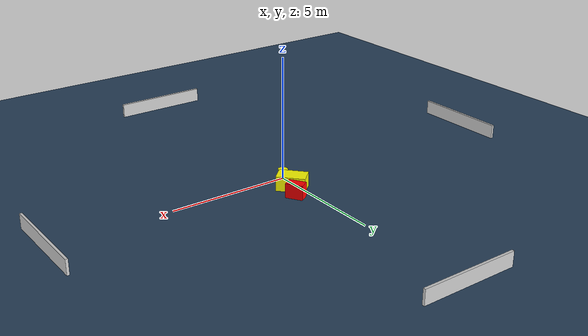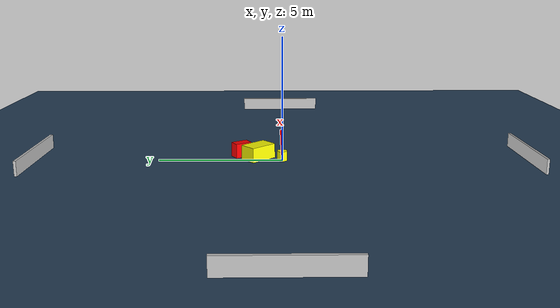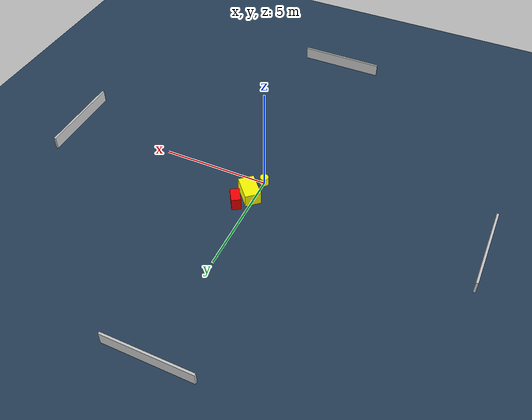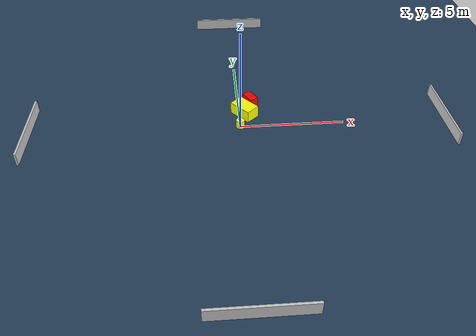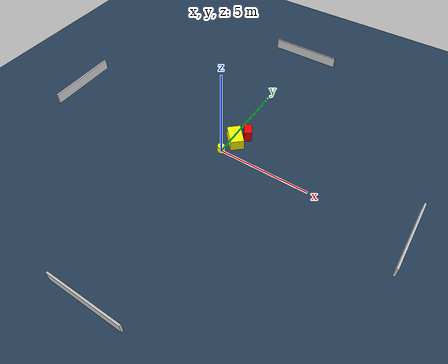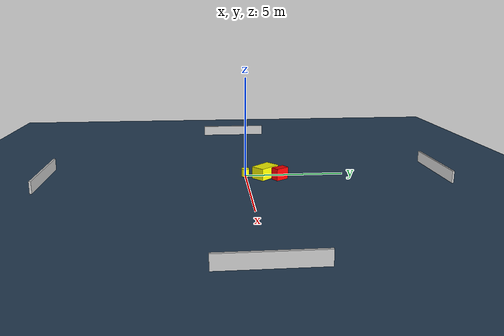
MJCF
<?xml version="1.0" ?>
<mujoco model="generated_environment">
  <option timestep="0.01" integrator="RK4" cone="elliptic"/>
  <default>
    <geom density="1"/>
  </default>
  <asset>
    <texture builtin="gradient" height="3072" name="skybox" rgb1="0.3 0.5 0.7" rgb2="0 0 0" type="skybox" width="512"/>
    <texture builtin="checker" height="300" name="groundplane" rgb1="0.2 0.3 0.4" rgb2="0.1 0.2 0.3" type="2d" width="300"/>
    <material name="groundplane" reflectance="0.2" texrepeat="5 5" texture="groundplane"/>
  </asset>
  <worldbody>
    <light dir="0 0 -1" directional="true" pos="0 0 1.5"/>
    <geom condim="3" friction="0.5 0.005 0.001" material="groundplane" name="floor" pos="0 0 0" size="0 0 0.05" type="plane"/>
    <body name="walls">
      <geom name="wall_1" condim="4" pos="-10.0 0.0 0.3" rgba="0.800000011920929 0.800000011920929 0.800000011920929 1.0" size="0.05 2.0 0.3" type="box"/>
      <geom name="wall_2" condim="4" pos="10.0 0.0 0.3" rgba="0.800000011920929 0.800000011920929 0.800000011920929 1.0" size="0.05 2.0 0.3" type="box"/>
      <geom name="wall_3" condim="4" pos="0.0 -10.0 0.3" rgba="0.800000011920929 0.800000011920929 0.800000011920929 1.0" size="2.0 0.05 0.3" type="box"/>
      <geom name="wall_4" condim="4" pos="0.0 10.0 0.3" rgba="0.800000011920929 0.800000011920929 0.800000011920929 1.0" size="2.0 0.05 0.3" type="box"/>
    </body>
    <body name="robot">
      <joint name="joint_x" type="slide" pos="0 0 0" axis="1 0 0"/>
      <joint name="joint_y" type="slide" pos="0 0 0" axis="0 1 0"/>
      <geom name="robot" type="cylinder" pos="0.0 0.0 0.2" size="0.2 0.2 0.0" mass="5.0" friction="1.0 0.005 0.0001" condim="4" rgba="1.0 1.0 0.0 1.0"/>
    </body>
    <body name="obstacle_1_movable">
      <geom name="obstacle_1_movable" condim="4" pos="0.26839959040232547 0.9757802099700014 0.3" euler="0 0 221.87825114607136" friction="0.0 0.005 0.001" rgba="1.0 1.0 0.0 1.0" size="0.3644953906147826 0.582377418584753 0.3" type="box" mass="0.1"/>
      <joint type="free"/>
    </body>
    <body name="obstacle_2_static">
      <geom name="obstacle_2_static" condim="4" pos="0.6139298289622871 1.6829584444169872 0.3" euler="0 0 32.160848784014206" friction="0.0 0.005 0.001" rgba="1.0 0.0 0.0 1.0" size="0.21153721538265802 0.3487963278111733 0.3" type="box"/>
    </body>
  </worldbody>
  <actuator>
    <motor name="actuator_x" joint="joint_x" gear="1" ctrlrange="-1 1"/>
    <motor name="actuator_y" joint="joint_y" gear="1" ctrlrange="-1 1"/>
  </actuator>
</mujoco>
